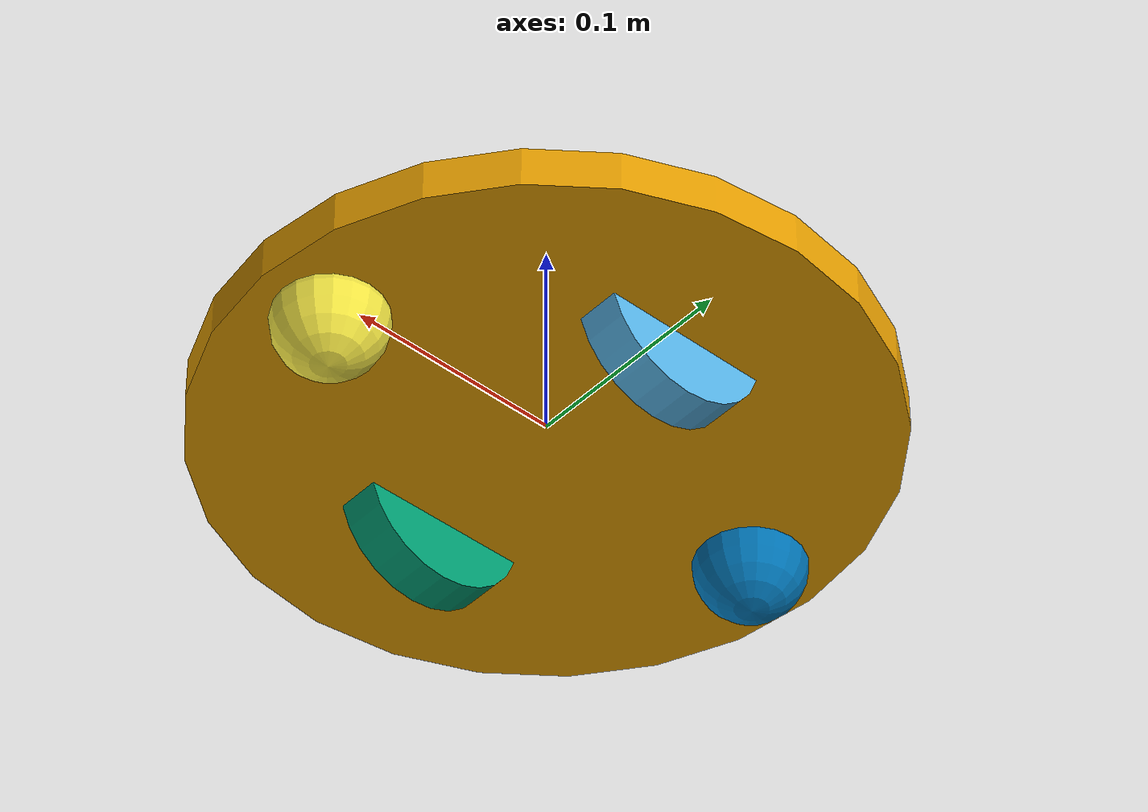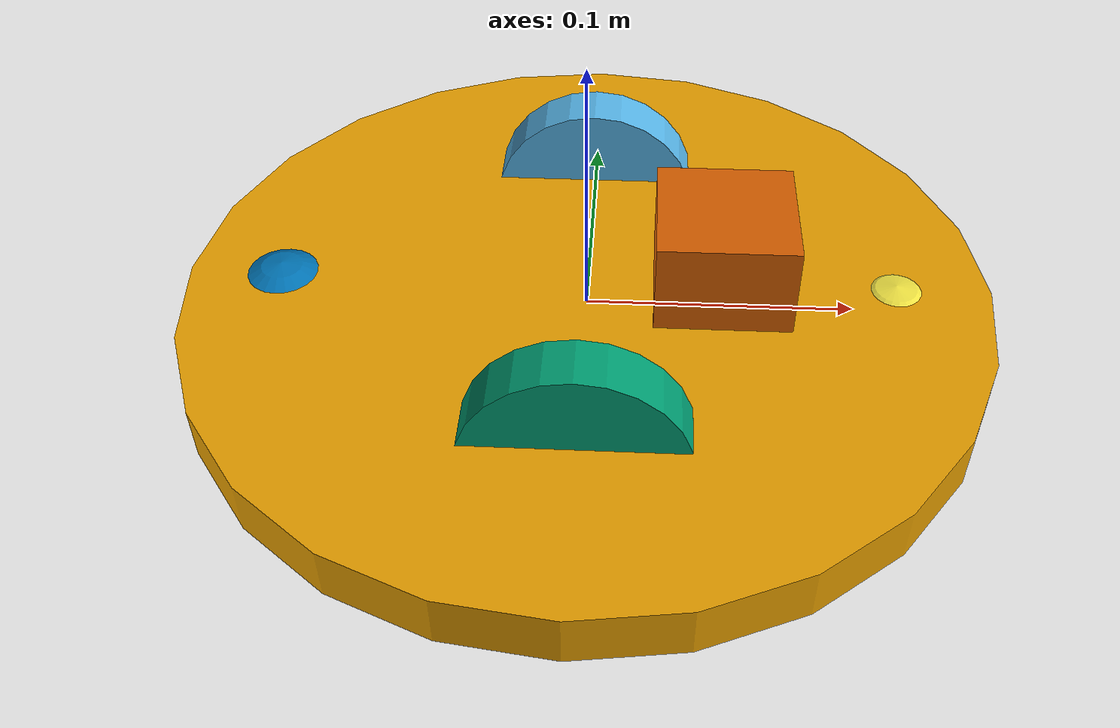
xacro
<?xml version="1.0"?>

<robot name="my_robot" xmlns:xacro="http://www.ros.org/wiki/xacro">
    <xacro:include filename="$(find my_robot_urdf)/urdf/camera.urdf.xacro"/>

    <xacro:property name="pi" value="3.1415" />
    <xacro:property name="radius_wheel" value="0.04"/>
    <xacro:property name="radius_caster" value="0.025"/>
    <xacro:property name="length" value="0.02"/>
    <xacro:property name="wheel_mass" value="2.5" /> <!-- in kg-->

    <xacro:property name="base_y_origin_to_wheel_origin" value="0.15"/>

    <xacro:macro name="cylinder_inertia" params="m r h">
        <inertial>
            <mass value="${m}"/>
            <origin xyz="0 0 0" />
            <inertia ixx="${m*(3*r*r+h*h)/12}" ixy = "0" ixz = "0"
              iyy="${m*(3*r*r+h*h)/12}" iyz = "0"
              izz="${m*r*r/2}" />
        </inertial>
    </xacro:macro>

    <xacro:macro name="caster_inertia" params="m r">
        <inertial>
            <mass value="${m}"/>
            <origin xyz="0 0 0"/>
            <inertia ixx="${(2*m*r*r)/5}" ixy="0" ixz="0"
                iyy="${(2*m*r*r)/5}" iyz="0"
                izz="${(2*m*r*r)/5}" />

        </inertial>
    </xacro:macro>

    <xacro:macro name="cylinder_wheel" params="lr parent translateX translateY flipY"> <!--fb : front, back ; lr: left, right -->
         <link name="${lr}_wheel">
            <visual>
                <origin xyz="0 0 0" rpy="${flipY*pi/2} 0  0 " />
                <geometry>
                <cylinder length="${length}" radius="${radius_wheel}" />
                </geometry>
            </visual>
            <collision>
                <origin xyz="0 0 0" rpy="${flipY*pi/2} 0 0 " />
                <geometry>
                <cylinder length="${length}" radius="${radius_wheel}" />
                </geometry>
            </collision>
            <xacro:cylinder_inertia m="${wheel_mass}" r="${radius_wheel}" h="${length}" />
        </link>

        <gazebo reference="${lr}_wheel">
            <mu1 value="1.0"/>
            <mu2 value="1.0"/>
            <kp value="10000000.0"/>
            <kd value="1.0"/>
            <fdir1 value="1.0"/>
            <turnGravityOff>false</turnGravityOff>
        </gazebo>

        <joint name="${lr}_wheel_joint" type="continuous">
            <parent link="${parent}"/>
            <child link="${lr}_wheel"/>
            <origin xyz="0 ${translateY*base_y_origin_to_wheel_origin} 0" rpy="0 0 0"/>
            <axis xyz="0 1 0" rpy="0 0 0"/>
            <limit effort="100" velocity="100"/>
            <joint_properties damping="0.0" friction="0.0"/>

        </joint>
        <transmission name="${lr}_wheel_joint_trans">
            <type>transmission_interface/simpleTransmission</type>
            <joint name="${lr}_wheel_joint">
                <hardwareInterface>hardware_interface/VelocityJointInterface</hardwareInterface>
            </joint>
            <actuator name="${lr}_wheel_joint_motor">
                <mechanicalReduction>1</mechanicalReduction>
            </actuator>
        </transmission>

    </xacro:macro>

    <xacro:macro name="caster_wheel" params= "fb parent translateX base_x_origin_to_caster_origin base_z_origin_to_caster_origin">   <!--translateX=0 per front translateX=1 per back-->
        <link name="caster_${fb}_wheel">
            <visual>
                <origin xyz="${translateX*0.02}  0.02 0" rpy="1.57 0 0"/>
                <geometry>
                    <sphere radius="${radius_caster}"/>
                </geometry>
            </visual>
            <collision>
                <origin xyz="${translateX*0.02}  0.02 0" rpy="1.57 0 0"/>
                <geometry>
                    <sphere radius="${radius_caster}"/>
                </geometry>
            </collision>
            <xacro:caster_inertia m="${wheel_mass}" r="${radius_caster}"/>
        </link>

        <joint name="caster_${fb}_joint" type="fixed">
            <parent link="${parent}"/>
            <child link="caster_${fb}_wheel"/>
            <origin xyz="${base_x_origin_to_caster_origin} 0 ${base_z_origin_to_caster_origin}" rpy="-1.57 0 0"/>
        </joint>

        <gazebo reference="caster_${fb}_wheel">
            <mu1 value="1.0"/>
            <mu2 value="1.0"/>
            <kp  value="10000000.0" />
            <kd  value="1.0" />
            <fdir1 value="1 0 0"/>
            <turnGravityOff>false</turnGravityOff>
        </gazebo>
    </xacro:macro>

    <link name="base_link">
        <visual>
        <geometry>
            <cylinder length="0.02" radius="0.15"/>
        </geometry>
        <origin rpy= "0 0 0" xyz= "0 0 0" />
        </visual>
        <xacro:cylinder_inertia m="5" r="0.15" h="0.02" />
    </link>

    <gazebo reference="base_link">
        <mu1 value="1.0"/>
        <mu2 value="1.0"/>
        <kp  value="10000000.0" />
        <kd  value="1.0" />
        <fdir1 value="1 0 0"/>
        <turnGravityOff>false</turnGravityOff>
    </gazebo>

    <xacro:cylinder_wheel  lr="left" parent="base_link" translateX="0" translateY="0.5" flipY="1" />
    <xacro:cylinder_wheel  lr="right" parent="base_link" translateX="0" translateY="-0.5" flipY="1" />

    <xacro:caster_wheel fb="front" parent="base_link" translateX="0" base_x_origin_to_caster_origin="0.115" base_z_origin_to_caster_origin="0.007" />
    <xacro:caster_wheel fb="back" parent="base_link" translateX="1" base_x_origin_to_caster_origin="-0.135" base_z_origin_to_caster_origin="0.009" />
    <xacro:mycameraRGB/>

    <gazebo>
        <plugin name="gazebo_ros_control" filename="libgazebo_ros_control.so">
            <robotNamespace>/</robotNamespace>
        </plugin>
    </gazebo>

     <gazebo>
        <plugin name="p3d_base_controller" filename="libgazebo_ros_p3d.so">
        <alwaysOn>true</alwaysOn>
        <updateRate>50.0</updateRate>
        <bodyName>base_link</bodyName>
        <topicName>ground_truth/state</topicName>
        <gaussianNoise>0.01</gaussianNoise>
        <frameName>map</frameName>
        <xyzOffsets>0 0 0</xyzOffsets>
        <rpyOffsets>0 0 0</rpyOffsets>
        </plugin>
    </gazebo>

</robot>

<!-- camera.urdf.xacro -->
<robot name="my_robot" xmlns:xacro="http://www.ros.org/wiki/xacro">

    <xacro:property name="PI" value="3.1415926535897931"/>
    <xacro:property name="mass" value="1" /> <!-- arbitrary value for mass -->
    <xacro:property name="width" value="0.1" /> <!-- Square dimensions (widthxwidth) of beams -->
    <xacro:property name="height1" value="2" /> <!-- Link 1 -->
    <xacro:property name="height2" value="1" /> <!-- Link 2 -->
    <xacro:property name="height3" value="1" /> <!-- Link 3 -->
    <xacro:property name="camera_link" value="0.05" /> <!-- Size of square 'camera' box -->
    <xacro:property name="axel_offset" value="0.05" /> <!-- Space btw top of beam and the each joint -->

    <xacro:macro name="mycameraRGB">

        <joint name="camera_joint" type="fixed">
            <axis xyz="0 1 0" />
            <origin xyz="${camera_link} 0 ${length}" rpy="0 0 0"/>                      <!-- - axel_offset*2  -->
            <parent link="base_link"/>
            <child link="camera_link"/>
        </joint>

        <link name="camera_link">
            <collision>
                <origin xyz="0 0 0" rpy="0 0 0"/>
                <geometry>
                    <box size="${camera_link} ${camera_link} ${camera_link}"/>
                </geometry>
            </collision>

            <visual>
                <origin xyz="0 0 0" rpy="0 0 0"/>
                <geometry>
                    <box size="${camera_link} ${camera_link} ${camera_link}"/>
                </geometry>
            </visual>

            <inertial>
                <mass value="1e-5"/>
                <origin xyz="0 0 0" rpy="0 0 0"/>
                <inertia ixx="1e-6" ixy="0" ixz="0" iyy="1e-6" iyz="0" izz="1e-6" />
            </inertial>
        </link>
        <gazebo reference="camera_link">
            <sensor type="camera" name="camera1">
                <update_rate>30.0</update_rate>
                <camera name="head">
                    <horizontal_fov>1.3962634</horizontal_fov>
                    <image>
                        <width>800</width>
                        <height>800</height>
                        <format>R8G8B8</format>
                    </image>
                    <clip>
                        <near>0.02</near>
                        <far>300</far>
                    </clip>
                    <noise>
                        <type>gaussian</type>
                        <mean>0.0</mean>
                        <stddev>0.007</stddev>
                    </noise>
                </camera>
                <plugin name="camera_controller" filename="libgazebo_ros_camera.so">
                    <alwaysOn>true</alwaysOn>
                    <updateRate>0.0</updateRate>
                    <cameraName>camera1</cameraName>
                    <imageTopicName>image_raw</imageTopicName>
                    <cameraInfoTopicName>camera_info</cameraInfoTopicName>
                    <frameName>camera_link</frameName>
                    <hackBaseline>0.07</hackBaseline>
                    <distortionK1>0.0</distortionK1>
                    <distortionK2>0.0</distortionK2>
                    <distortionK3>0.0</distortionK3>
                    <distortionT1>0.0</distortionT1>
                    <distortionT2>0.0</distortionT2>
                </plugin>
            </sensor>

        </gazebo>
    </xacro:macro>
</robot>
